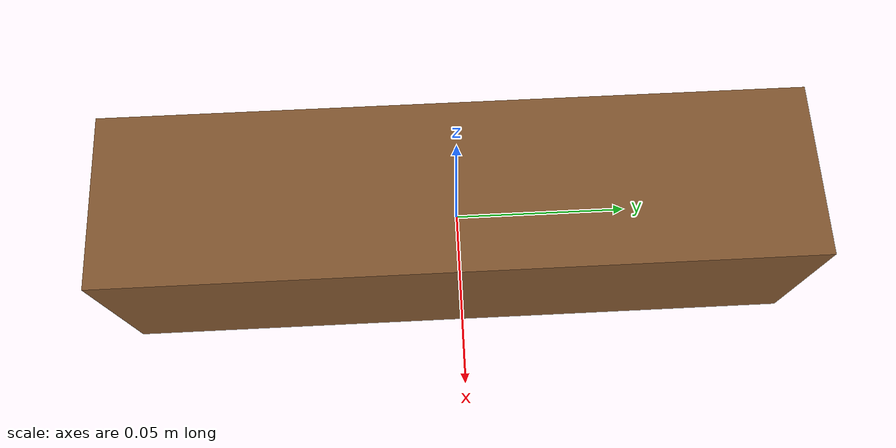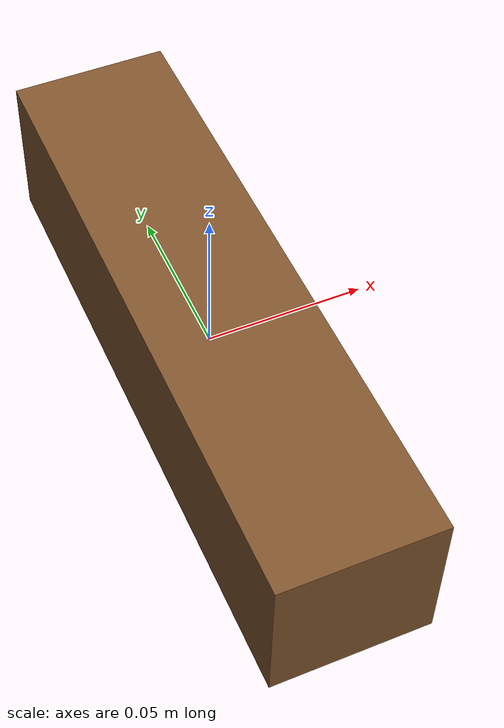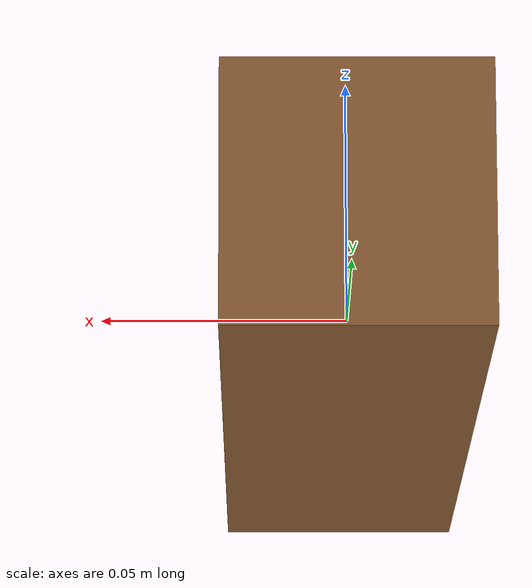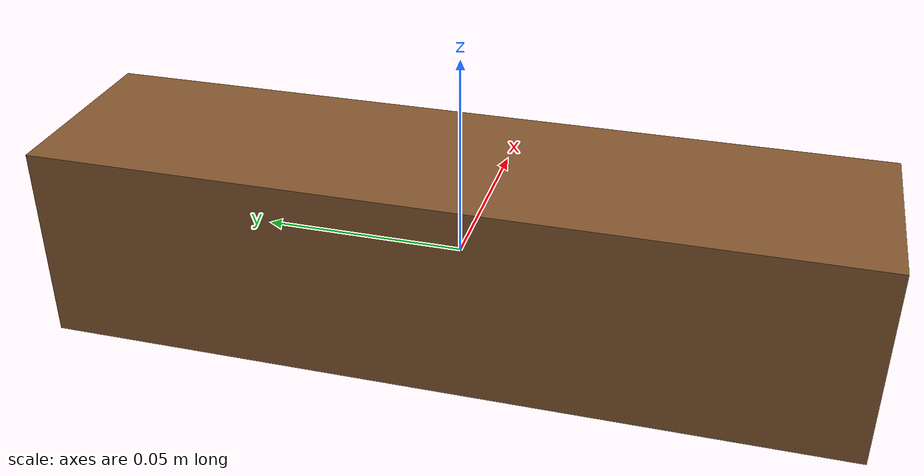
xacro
<?xml version="1.0"?>
<robot name="" xmlns:xacro="https://www.ros.org/wiki/xacro">

  <link name="kinect_sensor_link">
    <inertial>
      <origin xyz="0 0 0" rpy="0 0 0"/>
      <mass value="0.1"/>
      <inertia ixx="0.001" ixy="0" ixz="0" iyy="0.001" iyz="0" izz="0.001"/>
    </inertial>
    <visual>
      <origin xyz="0 0 0" rpy="0 0 0"/>
      <geometry>
        <box size="0.05 0.2 0.05"/>
      </geometry>
      <material name="brown"/>
    </visual>
    <collision>
      <origin xyz="0 0 0" rpy="0 0 0"/>
      <geometry>
        <box size="0.05 0.2 0.05"/>
      </geometry>
    </collision>
  </link>

  <link name="camera_link_optical">
  </link>

  <joint name="camera_optical_joint" type="fixed">
    <origin xyz="0 0 0" rpy="${-pi/2} 0.0 ${-pi/2}"/>
    <parent link="kinect_sensor_link"/>
    <child link="camera_link_optical"/>
  </joint>

  <gazebo reference="kinect_sensor_link">
   <sensor name="camera_1" type="depth">
    <alwaysOn>1</alwaysOn>
    <visualize>true</visualize>
    <camera>
      <horizontal_fov>1.047198</horizontal_fov>
      <image>
        <width>640</width>
        <height>480</height>
        <format>R8G8B8</format>
      </image>
      <depth_camera>

      </depth_camera>
      <clip>
        <near>0.1</near>
        <far>100</far>
      </clip>
    </camera>
    <plugin name="camera_controller" filename="libgazebo_ros_openni_kinect.so">
      <alwaysOn>true</alwaysOn>
      <updateRate>10.0</updateRate>
      <cameraName>kinect</cameraName>
      <imageTopicName>rgb/image_raw</imageTopicName>
      <cameraInfoTopicName>rgb/camera_info</cameraInfoTopicName>
      <depthImageTopicName>depth/image_raw</depthImageTopicName>
      <depthImageInfoTopicName>depth/camera_info</depthImageInfoTopicName>
      <pointCloudTopicName>depth/points</pointCloudTopicName>
      <frameName>camera_link_optical</frameName>
      <pointCloudCutoff>0.4</pointCloudCutoff>
      <distortionK1>0.0</distortionK1>
      <distortionK2>0.0</distortionK2>
      <distortionK3>0.0</distortionK3>
      <distortionT1>0.0</distortionT1>
      <distortionT2>0.0</distortionT2>
      <CxPrime>0</CxPrime>
      <Cx>0</Cx>
      <Cy>0</Cy>
      <focalLength>0</focalLength>
      <hackBaseline>0.07</hackBaseline>
    </plugin>
  </sensor>
 </gazebo>

</robot>
